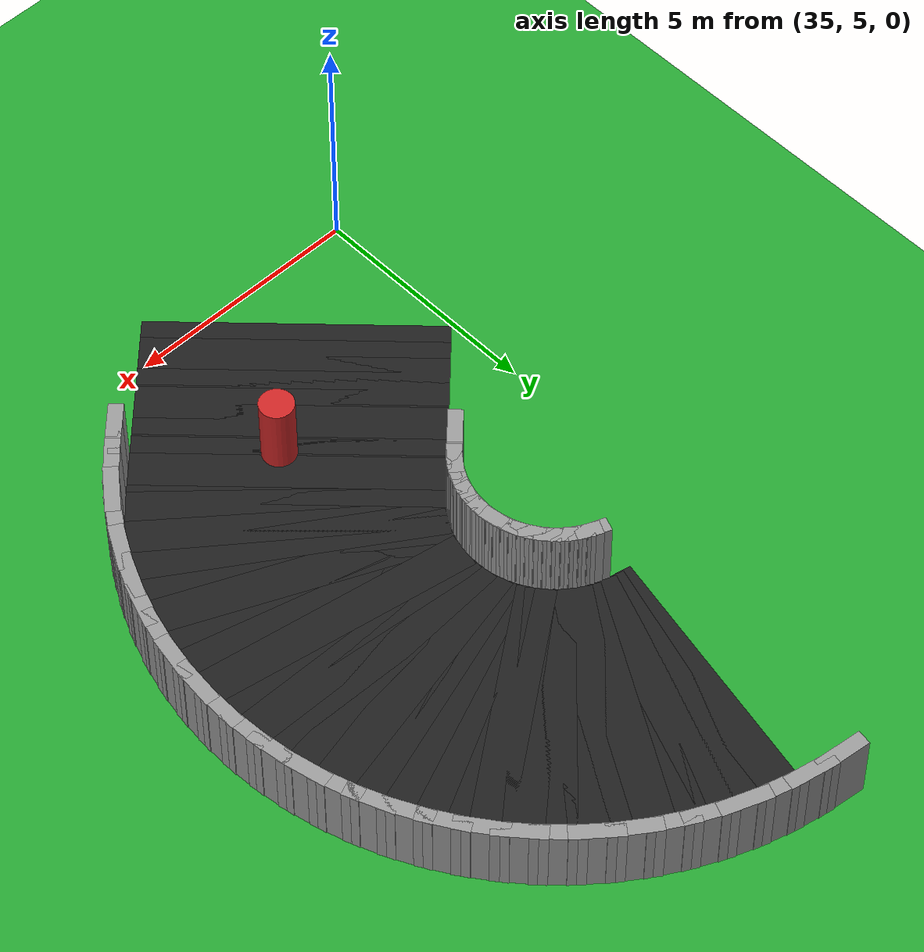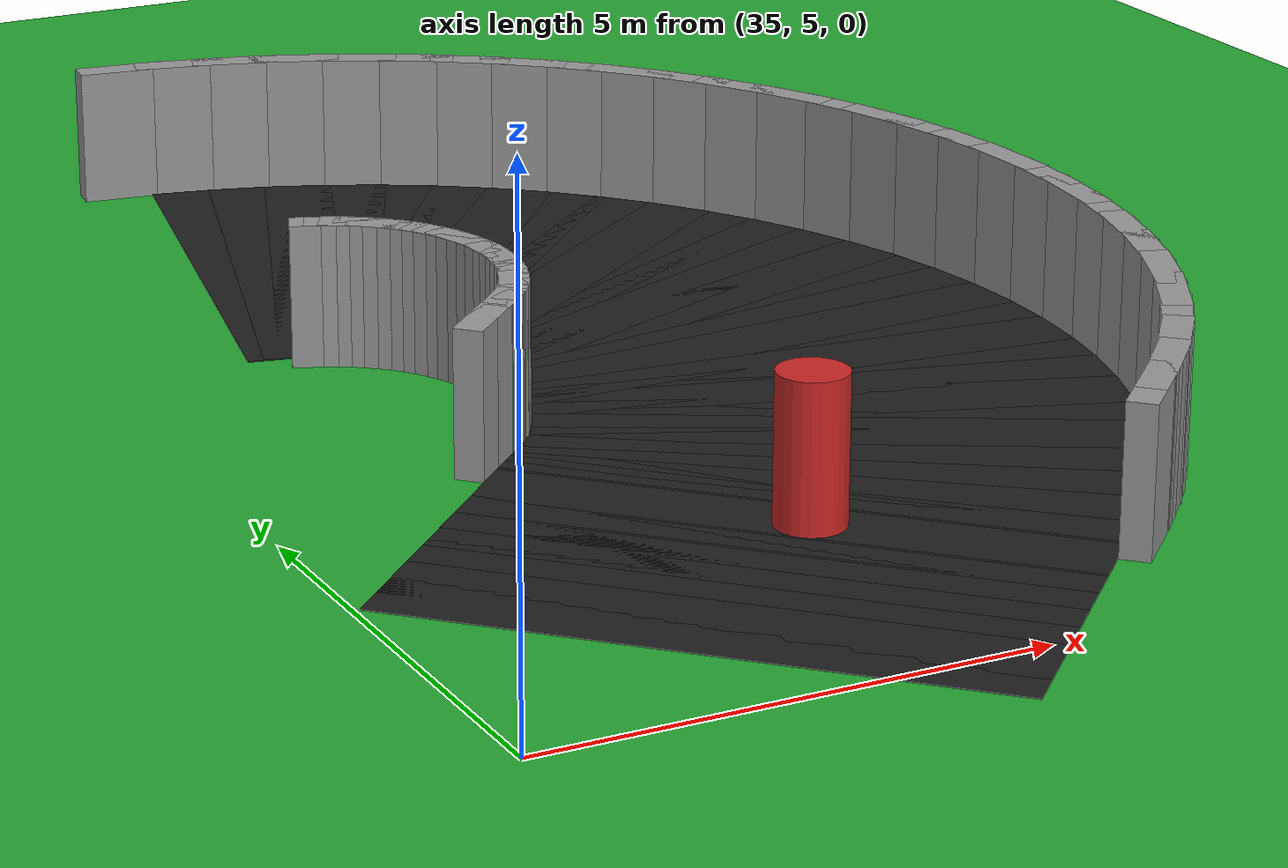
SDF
<sdf version="1.6">
 <world name="obstacle_mid">
  <include><uri>model://sun</uri></include>
  <model name="ground_plane">
   <static>true</static>
   <link name="link">
    <collision name="collision">
     <surface><friction><ode><mu>100</mu><mu2>50</mu2></ode></friction></surface>
     <geometry><plane><normal>0 0 1</normal><size>120 120</size></plane></geometry>
    </collision>
    <visual name="visual">
     <geometry><plane><normal>0 0 1</normal><size>120 120</size></plane></geometry>
     <material>
      <script><uri>file://media/materials/scripts/gazebo.material</uri><name>Gazebo/Green</name></script>
     </material>
    </visual>
   </link>
  </model>
  <model name="asphalt_99">
   <static>true</static>
   <pose>37.456 6.485 0.005 0 0 0.78540</pose>
   <link name="link">
    <visual name="visual">
     <geometry><box><size>0.760 6.000 0.010</size></box></geometry>
     <material>
      <script><uri>file://media/materials/scripts/gazebo.material</uri><name>Gazebo/Black</name></script>
     </material>
    </visual>
   </link>
  </model>
  <model name="asphalt_100">
   <static>true</static>
   <pose>37.738 6.768 0.005 0 0 0.78540</pose>
   <link name="link">
    <visual name="visual">
     <geometry><box><size>0.760 6.000 0.010</size></box></geometry>
     <material>
      <script><uri>file://media/materials/scripts/gazebo.material</uri><name>Gazebo/Black</name></script>
     </material>
    </visual>
   </link>
  </model>
  <model name="asphalt_101">
   <static>true</static>
   <pose>38.021 7.050 0.005 0 0 0.78540</pose>
   <link name="link">
    <visual name="visual">
     <geometry><box><size>0.760 6.000 0.010</size></box></geometry>
     <material>
      <script><uri>file://media/materials/scripts/gazebo.material</uri><name>Gazebo/Black</name></script>
     </material>
    </visual>
   </link>
  </model>
  <model name="asphalt_102">
   <static>true</static>
   <pose>38.304 7.333 0.005 0 0 0.78540</pose>
   <link name="link">
    <visual name="visual">
     <geometry><box><size>0.760 6.000 0.010</size></box></geometry>
     <material>
      <script><uri>file://media/materials/scripts/gazebo.material</uri><name>Gazebo/Black</name></script>
     </material>
    </visual>
   </link>
  </model>
  <model name="asphalt_103">
   <static>true</static>
   <pose>38.587 7.616 0.005 0 0 0.78540</pose>
   <link name="link">
    <visual name="visual">
     <geometry><box><size>0.760 6.000 0.010</size></box></geometry>
     <material>
      <script><uri>file://media/materials/scripts/gazebo.material</uri><name>Gazebo/Black</name></script>
     </material>
    </visual>
   </link>
  </model>
  <model name="asphalt_104">
   <static>true</static>
   <pose>38.870 7.899 0.005 0 0 0.78540</pose>
   <link name="link">
    <visual name="visual">
     <geometry><box><size>0.760 6.000 0.010</size></box></geometry>
     <material>
      <script><uri>file://media/materials/scripts/gazebo.material</uri><name>Gazebo/Black</name></script>
     </material>
    </visual>
   </link>
  </model>
  <model name="asphalt_105">
   <static>true</static>
   <pose>39.153 8.182 0.005 0 0 0.78540</pose>
   <link name="link">
    <visual name="visual">
     <geometry><box><size>0.760 6.000 0.010</size></box></geometry>
     <material>
      <script><uri>file://media/materials/scripts/gazebo.material</uri><name>Gazebo/Black</name></script>
     </material>
    </visual>
   </link>
  </model>
  <model name="asphalt_106">
   <static>true</static>
   <pose>39.435 8.465 0.005 0 0 0.78540</pose>
   <link name="link">
    <visual name="visual">
     <geometry><box><size>0.760 6.000 0.010</size></box></geometry>
     <material>
      <script><uri>file://media/materials/scripts/gazebo.material</uri><name>Gazebo/Black</name></script>
     </material>
    </visual>
   </link>
  </model>
  <model name="asphalt_107">
   <static>true</static>
   <pose>39.718 8.747 0.005 0 0 0.78540</pose>
   <link name="link">
    <visual name="visual">
     <geometry><box><size>0.760 6.000 0.010</size></box></geometry>
     <material>
      <script><uri>file://media/materials/scripts/gazebo.material</uri><name>Gazebo/Black</name></script>
     </material>
    </visual>
   </link>
  </model>
  <model name="curbL_107">
   <static>true</static>
   <pose>37.491 10.975 0.750 0 0 0.78540</pose>
   <link name="link">
    <collision name="collision"><geometry><box><size>0.760 0.300 1.500</size></box></geometry></collision>
    <visual name="visual">
     <geometry><box><size>0.760 0.300 1.500</size></box></geometry>
     <material>
      <script><uri>file://media/materials/scripts/gazebo.material</uri><name>Gazebo/Grey</name></script>
     </material>
    </visual>
   </link>
  </model>
  <model name="curbR_107">
   <static>true</static>
   <pose>41.946 6.520 0.750 0 0 0.78540</pose>
   <link name="link">
    <collision name="collision"><geometry><box><size>0.760 0.300 1.500</size></box></geometry></collision>
    <visual name="visual">
     <geometry><box><size>0.760 0.300 1.500</size></box></geometry>
     <material>
      <script><uri>file://media/materials/scripts/gazebo.material</uri><name>Gazebo/Grey</name></script>
     </material>
    </visual>
   </link>
  </model>
  <model name="asphalt_108">
   <static>true</static>
   <pose>40.001 9.030 0.005 0 0 0.78540</pose>
   <link name="link">
    <visual name="visual">
     <geometry><box><size>0.760 6.000 0.010</size></box></geometry>
     <material>
      <script><uri>file://media/materials/scripts/gazebo.material</uri><name>Gazebo/Black</name></script>
     </material>
    </visual>
   </link>
  </model>
  <model name="curbL_108">
   <static>true</static>
   <pose>37.774 11.258 0.750 0 0 0.78540</pose>
   <link name="link">
    <collision name="collision"><geometry><box><size>0.760 0.300 1.500</size></box></geometry></collision>
    <visual name="visual">
     <geometry><box><size>0.760 0.300 1.500</size></box></geometry>
     <material>
      <script><uri>file://media/materials/scripts/gazebo.material</uri><name>Gazebo/Grey</name></script>
     </material>
    </visual>
   </link>
  </model>
  <model name="curbR_108">
   <static>true</static>
   <pose>42.228 6.803 0.750 0 0 0.78540</pose>
   <link name="link">
    <collision name="collision"><geometry><box><size>0.760 0.300 1.500</size></box></geometry></collision>
    <visual name="visual">
     <geometry><box><size>0.760 0.300 1.500</size></box></geometry>
     <material>
      <script><uri>file://media/materials/scripts/gazebo.material</uri><name>Gazebo/Grey</name></script>
     </material>
    </visual>
   </link>
  </model>
  <model name="asphalt_109">
   <static>true</static>
   <pose>40.280 9.321 0.005 0 0 0.82602</pose>
   <link name="link">
    <visual name="visual">
     <geometry><box><size>0.766 6.000 0.010</size></box></geometry>
     <material>
      <script><uri>file://media/materials/scripts/gazebo.material</uri><name>Gazebo/Black</name></script>
     </material>
    </visual>
   </link>
  </model>
  <model name="curbL_109">
   <static>true</static>
   <pose>37.966 11.454 0.750 0 0 0.82602</pose>
   <link name="link">
    <collision name="collision"><geometry><box><size>0.510 0.300 1.500</size></box></geometry></collision>
    <visual name="visual">
     <geometry><box><size>0.510 0.300 1.500</size></box></geometry>
     <material>
      <script><uri>file://media/materials/scripts/gazebo.material</uri><name>Gazebo/Grey</name></script>
     </material>
    </visual>
   </link>
  </model>
  <model name="curbR_109">
   <static>true</static>
   <pose>42.594 7.188 0.750 0 0 0.82602</pose>
   <link name="link">
    <collision name="collision"><geometry><box><size>1.022 0.300 1.500</size></box></geometry></collision>
    <visual name="visual">
     <geometry><box><size>1.022 0.300 1.500</size></box></geometry>
     <material>
      <script><uri>file://media/materials/scripts/gazebo.material</uri><name>Gazebo/Grey</name></script>
     </material>
    </visual>
   </link>
  </model>
  <model name="asphalt_110">
   <static>true</static>
   <pose>40.543 9.630 0.005 0 0 0.90727</pose>
   <link name="link">
    <visual name="visual">
     <geometry><box><size>0.766 6.000 0.010</size></box></geometry>
     <material>
      <script><uri>file://media/materials/scripts/gazebo.material</uri><name>Gazebo/Black</name></script>
     </material>
    </visual>
   </link>
  </model>
  <model name="curbL_110">
   <static>true</static>
   <pose>38.063 11.569 0.750 0 0 0.90727</pose>
   <link name="link">
    <collision name="collision"><geometry><box><size>0.510 0.300 1.500</size></box></geometry></collision>
    <visual name="visual">
     <geometry><box><size>0.510 0.300 1.500</size></box></geometry>
     <material>
      <script><uri>file://media/materials/scripts/gazebo.material</uri><name>Gazebo/Grey</name></script>
     </material>
    </visual>
   </link>
  </model>
  <model name="curbR_110">
   <static>true</static>
   <pose>43.023 7.692 0.750 0 0 0.90727</pose>
   <link name="link">
    <collision name="collision"><geometry><box><size>1.022 0.300 1.500</size></box></geometry></collision>
    <visual name="visual">
     <geometry><box><size>1.022 0.300 1.500</size></box></geometry>
     <material>
      <script><uri>file://media/materials/scripts/gazebo.material</uri><name>Gazebo/Grey</name></script>
     </material>
    </visual>
   </link>
  </model>
  <model name="asphalt_111">
   <static>true</static>
   <pose>40.780 9.960 0.005 0 0 0.98852</pose>
   <link name="link">
    <visual name="visual">
     <geometry><box><size>0.766 6.000 0.010</size></box></geometry>
     <material>
      <script><uri>file://media/materials/scripts/gazebo.material</uri><name>Gazebo/Black</name></script>
     </material>
    </visual>
   </link>
  </model>
  <model name="curbL_111">
   <static>true</static>
   <pose>38.151 11.691 0.750 0 0 0.98852</pose>
   <link name="link">
    <collision name="collision"><geometry><box><size>0.510 0.300 1.500</size></box></geometry></collision>
    <visual name="visual">
     <geometry><box><size>0.510 0.300 1.500</size></box></geometry>
     <material>
      <script><uri>file://media/materials/scripts/gazebo.material</uri><name>Gazebo/Grey</name></script>
     </material>
    </visual>
   </link>
  </model>
  <model name="curbR_111">
   <static>true</static>
   <pose>43.409 8.229 0.750 0 0 0.98852</pose>
   <link name="link">
    <collision name="collision"><geometry><box><size>1.022 0.300 1.500</size></box></geometry></collision>
    <visual name="visual">
     <geometry><box><size>1.022 0.300 1.500</size></box></geometry>
     <material>
      <script><uri>file://media/materials/scripts/gazebo.material</uri><name>Gazebo/Grey</name></script>
     </material>
    </visual>
   </link>
  </model>
  <model name="asphalt_112">
   <static>true</static>
   <pose>40.989 10.308 0.005 0 0 1.06977</pose>
   <link name="link">
    <visual name="visual">
     <geometry><box><size>0.766 6.000 0.010</size></box></geometry>
     <material>
      <script><uri>file://media/materials/scripts/gazebo.material</uri><name>Gazebo/Black</name></script>
     </material>
    </visual>
   </link>
  </model>
  <model name="curbL_112">
   <static>true</static>
   <pose>38.228 11.820 0.750 0 0 1.06977</pose>
   <link name="link">
    <collision name="collision"><geometry><box><size>0.510 0.300 1.500</size></box></geometry></collision>
    <visual name="visual">
     <geometry><box><size>0.510 0.300 1.500</size></box></geometry>
     <material>
      <script><uri>file://media/materials/scripts/gazebo.material</uri><name>Gazebo/Grey</name></script>
     </material>
    </visual>
   </link>
  </model>
  <model name="curbR_112">
   <static>true</static>
   <pose>43.750 8.796 0.750 0 0 1.06977</pose>
   <link name="link">
    <collision name="collision"><geometry><box><size>1.022 0.300 1.500</size></box></geometry></collision>
    <visual name="visual">
     <geometry><box><size>1.022 0.300 1.500</size></box></geometry>
     <material>
      <script><uri>file://media/materials/scripts/gazebo.material</uri><name>Gazebo/Grey</name></script>
     </material>
    </visual>
   </link>
  </model>
  <model name="asphalt_113">
   <static>true</static>
   <pose>41.169 10.672 0.005 0 0 1.15101</pose>
   <link name="link">
    <visual name="visual">
     <geometry><box><size>0.766 6.000 0.010</size></box></geometry>
     <material>
      <script><uri>file://media/materials/scripts/gazebo.material</uri><name>Gazebo/Black</name></script>
     </material>
    </visual>
   </link>
  </model>
  <model name="curbL_113">
   <static>true</static>
   <pose>38.295 11.954 0.750 0 0 1.15101</pose>
   <link name="link">
    <collision name="collision"><geometry><box><size>0.510 0.300 1.500</size></box></geometry></collision>
    <visual name="visual">
     <geometry><box><size>0.510 0.300 1.500</size></box></geometry>
     <material>
      <script><uri>file://media/materials/scripts/gazebo.material</uri><name>Gazebo/Grey</name></script>
     </material>
    </visual>
   </link>
  </model>
  <model name="curbR_113">
   <static>true</static>
   <pose>44.044 9.389 0.750 0 0 1.15101</pose>
   <link name="link">
    <collision name="collision"><geometry><box><size>1.022 0.300 1.500</size></box></geometry></collision>
    <visual name="visual">
     <geometry><box><size>1.022 0.300 1.500</size></box></geometry>
     <material>
      <script><uri>file://media/materials/scripts/gazebo.material</uri><name>Gazebo/Grey</name></script>
     </material>
    </visual>
   </link>
  </model>
  <model name="asphalt_114">
   <static>true</static>
   <pose>41.320 11.049 0.005 0 0 1.23226</pose>
   <link name="link">
    <visual name="visual">
     <geometry><box><size>0.766 6.000 0.010</size></box></geometry>
     <material>
      <script><uri>file://media/materials/scripts/gazebo.material</uri><name>Gazebo/Black</name></script>
     </material>
    </visual>
   </link>
  </model>
  <model name="curbL_114">
   <static>true</static>
   <pose>38.351 12.094 0.750 0 0 1.23226</pose>
   <link name="link">
    <collision name="collision"><geometry><box><size>0.510 0.300 1.500</size></box></geometry></collision>
    <visual name="visual">
     <geometry><box><size>0.510 0.300 1.500</size></box></geometry>
     <material>
      <script><uri>file://media/materials/scripts/gazebo.material</uri><name>Gazebo/Grey</name></script>
     </material>
    </visual>
   </link>
  </model>
  <model name="curbR_114">
   <static>true</static>
   <pose>44.288 10.003 0.750 0 0 1.23226</pose>
   <link name="link">
    <collision name="collision"><geometry><box><size>1.022 0.300 1.500</size></box></geometry></collision>
    <visual name="visual">
     <geometry><box><size>1.022 0.300 1.500</size></box></geometry>
     <material>
      <script><uri>file://media/materials/scripts/gazebo.material</uri><name>Gazebo/Grey</name></script>
     </material>
    </visual>
   </link>
  </model>
  <model name="asphalt_115">
   <static>true</static>
   <pose>41.439 11.437 0.005 0 0 1.31351</pose>
   <link name="link">
    <visual name="visual">
     <geometry><box><size>0.766 6.000 0.010</size></box></geometry>
     <material>
      <script><uri>file://media/materials/scripts/gazebo.material</uri><name>Gazebo/Black</name></script>
     </material>
    </visual>
   </link>
  </model>
  <model name="curbL_115">
   <static>true</static>
   <pose>38.395 12.238 0.750 0 0 1.31351</pose>
   <link name="link">
    <collision name="collision"><geometry><box><size>0.510 0.300 1.500</size></box></geometry></collision>
    <visual name="visual">
     <geometry><box><size>0.510 0.300 1.500</size></box></geometry>
     <material>
      <script><uri>file://media/materials/scripts/gazebo.material</uri><name>Gazebo/Grey</name></script>
     </material>
    </visual>
   </link>
  </model>
  <model name="curbR_115">
   <static>true</static>
   <pose>44.483 10.636 0.750 0 0 1.31351</pose>
   <link name="link">
    <collision name="collision"><geometry><box><size>1.022 0.300 1.500</size></box></geometry></collision>
    <visual name="visual">
     <geometry><box><size>1.022 0.300 1.500</size></box></geometry>
     <material>
      <script><uri>file://media/materials/scripts/gazebo.material</uri><name>Gazebo/Grey</name></script>
     </material>
    </visual>
   </link>
  </model>
  <model name="asphalt_116">
   <static>true</static>
   <pose>41.526 11.833 0.005 0 0 1.39476</pose>
   <link name="link">
    <visual name="visual">
     <geometry><box><size>0.766 6.000 0.010</size></box></geometry>
     <material>
      <script><uri>file://media/materials/scripts/gazebo.material</uri><name>Gazebo/Black</name></script>
     </material>
    </visual>
   </link>
  </model>
  <model name="curbL_116">
   <static>true</static>
   <pose>38.427 12.384 0.750 0 0 1.39476</pose>
   <link name="link">
    <collision name="collision"><geometry><box><size>0.510 0.300 1.500</size></box></geometry></collision>
    <visual name="visual">
     <geometry><box><size>0.510 0.300 1.500</size></box></geometry>
     <material>
      <script><uri>file://media/materials/scripts/gazebo.material</uri><name>Gazebo/Grey</name></script>
     </material>
    </visual>
   </link>
  </model>
  <model name="curbR_116">
   <static>true</static>
   <pose>44.625 11.282 0.750 0 0 1.39476</pose>
   <link name="link">
    <collision name="collision"><geometry><box><size>1.022 0.300 1.500</size></box></geometry></collision>
    <visual name="visual">
     <geometry><box><size>1.022 0.300 1.500</size></box></geometry>
     <material>
      <script><uri>file://media/materials/scripts/gazebo.material</uri><name>Gazebo/Grey</name></script>
     </material>
    </visual>
   </link>
  </model>
  <model name="asphalt_117">
   <static>true</static>
   <pose>41.581 12.235 0.005 0 0 1.47601</pose>
   <link name="link">
    <visual name="visual">
     <geometry><box><size>0.766 6.000 0.010</size></box></geometry>
     <material>
      <script><uri>file://media/materials/scripts/gazebo.material</uri><name>Gazebo/Black</name></script>
     </material>
    </visual>
   </link>
  </model>
  <model name="curbL_117">
   <static>true</static>
   <pose>38.448 12.533 0.750 0 0 1.47601</pose>
   <link name="link">
    <collision name="collision"><geometry><box><size>0.510 0.300 1.500</size></box></geometry></collision>
    <visual name="visual">
     <geometry><box><size>0.510 0.300 1.500</size></box></geometry>
     <material>
      <script><uri>file://media/materials/scripts/gazebo.material</uri><name>Gazebo/Grey</name></script>
     </material>
    </visual>
   </link>
  </model>
  <model name="curbR_117">
   <static>true</static>
   <pose>44.714 11.937 0.750 0 0 1.47601</pose>
   <link name="link">
    <collision name="collision"><geometry><box><size>1.022 0.300 1.500</size></box></geometry></collision>
    <visual name="visual">
     <geometry><box><size>1.022 0.300 1.500</size></box></geometry>
     <material>
      <script><uri>file://media/materials/scripts/gazebo.material</uri><name>Gazebo/Grey</name></script>
     </material>
    </visual>
   </link>
  </model>
  <model name="asphalt_118">
   <static>true</static>
   <pose>41.603 12.641 0.005 0 0 1.55725</pose>
   <link name="link">
    <visual name="visual">
     <geometry><box><size>0.766 6.000 0.010</size></box></geometry>
     <material>
      <script><uri>file://media/materials/scripts/gazebo.material</uri><name>Gazebo/Black</name></script>
     </material>
    </visual>
   </link>
  </model>
  <model name="curbL_118">
   <static>true</static>
   <pose>38.456 12.683 0.750 0 0 1.55725</pose>
   <link name="link">
    <collision name="collision"><geometry><box><size>0.510 0.300 1.500</size></box></geometry></collision>
    <visual name="visual">
     <geometry><box><size>0.510 0.300 1.500</size></box></geometry>
     <material>
      <script><uri>file://media/materials/scripts/gazebo.material</uri><name>Gazebo/Grey</name></script>
     </material>
    </visual>
   </link>
  </model>
  <model name="curbR_118">
   <static>true</static>
   <pose>44.750 12.598 0.750 0 0 1.55725</pose>
   <link name="link">
    <collision name="collision"><geometry><box><size>1.022 0.300 1.500</size></box></geometry></collision>
    <visual name="visual">
     <geometry><box><size>1.022 0.300 1.500</size></box></geometry>
     <material>
      <script><uri>file://media/materials/scripts/gazebo.material</uri><name>Gazebo/Grey</name></script>
     </material>
    </visual>
   </link>
  </model>
  <model name="asphalt_119">
   <static>true</static>
   <pose>41.592 13.046 0.005 0 0 1.63850</pose>
   <link name="link">
    <visual name="visual">
     <geometry><box><size>0.766 6.000 0.010</size></box></geometry>
     <material>
      <script><uri>file://media/materials/scripts/gazebo.material</uri><name>Gazebo/Black</name></script>
     </material>
    </visual>
   </link>
  </model>
  <model name="curbL_119">
   <static>true</static>
   <pose>38.452 12.833 0.750 0 0 1.63850</pose>
   <link name="link">
    <collision name="collision"><geometry><box><size>0.510 0.300 1.500</size></box></geometry></collision>
    <visual name="visual">
     <geometry><box><size>0.510 0.300 1.500</size></box></geometry>
     <material>
      <script><uri>file://media/materials/scripts/gazebo.material</uri><name>Gazebo/Grey</name></script>
     </material>
    </visual>
   </link>
  </model>
  <model name="curbR_119">
   <static>true</static>
   <pose>44.732 13.259 0.750 0 0 1.63850</pose>
   <link name="link">
    <collision name="collision"><geometry><box><size>1.022 0.300 1.500</size></box></geometry></collision>
    <visual name="visual">
     <geometry><box><size>1.022 0.300 1.500</size></box></geometry>
     <material>
      <script><uri>file://media/materials/scripts/gazebo.material</uri><name>Gazebo/Grey</name></script>
     </material>
    </visual>
   </link>
  </model>
  <model name="asphalt_120">
   <static>true</static>
   <pose>41.548 13.450 0.005 0 0 1.71975</pose>
   <link name="link">
    <visual name="visual">
     <geometry><box><size>0.766 6.000 0.010</size></box></geometry>
     <material>
      <script><uri>file://media/materials/scripts/gazebo.material</uri><name>Gazebo/Black</name></script>
     </material>
    </visual>
   </link>
  </model>
  <model name="curbL_120">
   <static>true</static>
   <pose>38.435 12.983 0.750 0 0 1.71975</pose>
   <link name="link">
    <collision name="collision"><geometry><box><size>0.510 0.300 1.500</size></box></geometry></collision>
    <visual name="visual">
     <geometry><box><size>0.510 0.300 1.500</size></box></geometry>
     <material>
      <script><uri>file://media/materials/scripts/gazebo.material</uri><name>Gazebo/Grey</name></script>
     </material>
    </visual>
   </link>
  </model>
  <model name="curbR_120">
   <static>true</static>
   <pose>44.660 13.917 0.750 0 0 1.71975</pose>
   <link name="link">
    <collision name="collision"><geometry><box><size>1.022 0.300 1.500</size></box></geometry></collision>
    <visual name="visual">
     <geometry><box><size>1.022 0.300 1.500</size></box></geometry>
     <material>
      <script><uri>file://media/materials/scripts/gazebo.material</uri><name>Gazebo/Grey</name></script>
     </material>
    </visual>
   </link>
  </model>
  <model name="asphalt_121">
   <static>true</static>
   <pose>41.471 13.848 0.005 0 0 1.80100</pose>
   <link name="link">
    <visual name="visual">
     <geometry><box><size>0.766 6.000 0.010</size></box></geometry>
     <material>
      <script><uri>file://media/materials/scripts/gazebo.material</uri><name>Gazebo/Black</name></script>
     </material>
    </visual>
   </link>
  </model>
  <model name="curbL_121">
   <static>true</static>
   <pose>38.407 13.130 0.750 0 0 1.80100</pose>
   <link name="link">
    <collision name="collision"><geometry><box><size>0.510 0.300 1.500</size></box></geometry></collision>
    <visual name="visual">
     <geometry><box><size>0.510 0.300 1.500</size></box></geometry>
     <material>
      <script><uri>file://media/materials/scripts/gazebo.material</uri><name>Gazebo/Grey</name></script>
     </material>
    </visual>
   </link>
  </model>
  <model name="curbR_121">
   <static>true</static>
   <pose>44.536 14.567 0.750 0 0 1.80100</pose>
   <link name="link">
    <collision name="collision"><geometry><box><size>1.022 0.300 1.500</size></box></geometry></collision>
    <visual name="visual">
     <geometry><box><size>1.022 0.300 1.500</size></box></geometry>
     <material>
      <script><uri>file://media/materials/scripts/gazebo.material</uri><name>Gazebo/Grey</name></script>
     </material>
    </visual>
   </link>
  </model>
  <model name="asphalt_122">
   <static>true</static>
   <pose>41.363 14.240 0.005 0 0 1.88225</pose>
   <link name="link">
    <visual name="visual">
     <geometry><box><size>0.766 6.000 0.010</size></box></geometry>
     <material>
      <script><uri>file://media/materials/scripts/gazebo.material</uri><name>Gazebo/Black</name></script>
     </material>
    </visual>
   </link>
  </model>
  <model name="curbL_122">
   <static>true</static>
   <pose>38.367 13.275 0.750 0 0 1.88225</pose>
   <link name="link">
    <collision name="collision"><geometry><box><size>0.510 0.300 1.500</size></box></geometry></collision>
    <visual name="visual">
     <geometry><box><size>0.510 0.300 1.500</size></box></geometry>
     <material>
      <script><uri>file://media/materials/scripts/gazebo.material</uri><name>Gazebo/Grey</name></script>
     </material>
    </visual>
   </link>
  </model>
  <model name="curbR_122">
   <static>true</static>
   <pose>44.359 15.204 0.750 0 0 1.88225</pose>
   <link name="link">
    <collision name="collision"><geometry><box><size>1.022 0.300 1.500</size></box></geometry></collision>
    <visual name="visual">
     <geometry><box><size>1.022 0.300 1.500</size></box></geometry>
     <material>
      <script><uri>file://media/materials/scripts/gazebo.material</uri><name>Gazebo/Grey</name></script>
     </material>
    </visual>
   </link>
  </model>
  <model name="asphalt_123">
   <static>true</static>
   <pose>41.223 14.621 0.005 0 0 1.96350</pose>
   <link name="link">
    <visual name="visual">
     <geometry><box><size>0.766 6.000 0.010</size></box></geometry>
     <material>
      <script><uri>file://media/materials/scripts/gazebo.material</uri><name>Gazebo/Black</name></script>
     </material>
    </visual>
   </link>
  </model>
  <model name="curbL_123">
   <static>true</static>
   <pose>38.315 13.416 0.750 0 0 1.96350</pose>
   <link name="link">
    <collision name="collision"><geometry><box><size>0.510 0.300 1.500</size></box></geometry></collision>
    <visual name="visual">
     <geometry><box><size>0.510 0.300 1.500</size></box></geometry>
     <material>
      <script><uri>file://media/materials/scripts/gazebo.material</uri><name>Gazebo/Grey</name></script>
     </material>
    </visual>
   </link>
  </model>
  <model name="curbR_123">
   <static>true</static>
   <pose>44.131 15.825 0.750 0 0 1.96350</pose>
   <link name="link">
    <collision name="collision"><geometry><box><size>1.022 0.300 1.500</size></box></geometry></collision>
    <visual name="visual">
     <geometry><box><size>1.022 0.300 1.500</size></box></geometry>
     <material>
      <script><uri>file://media/materials/scripts/gazebo.material</uri><name>Gazebo/Grey</name></script>
     </material>
    </visual>
   </link>
  </model>
  <model name="asphalt_124">
   <static>true</static>
   <pose>41.052 14.989 0.005 0 0 2.04474</pose>
   <link name="link">
    <visual name="visual">
     <geometry><box><size>0.766 6.000 0.010</size></box></geometry>
     <material>
      <script><uri>file://media/materials/scripts/gazebo.material</uri><name>Gazebo/Black</name></script>
     </material>
    </visual>
   </link>
  </model>
  <model name="curbL_124">
   <static>true</static>
   <pose>38.252 13.553 0.750 0 0 2.04474</pose>
   <link name="link">
    <collision name="collision"><geometry><box><size>0.510 0.300 1.500</size></box></geometry></collision>
    <visual name="visual">
     <geometry><box><size>0.510 0.300 1.500</size></box></geometry>
     <material>
      <script><uri>file://media/materials/scripts/gazebo.material</uri><name>Gazebo/Grey</name></script>
     </material>
    </visual>
   </link>
  </model>
  <model name="curbR_124">
   <static>true</static>
   <pose>43.853 16.425 0.750 0 0 2.04474</pose>
   <link name="link">
    <collision name="collision"><geometry><box><size>1.022 0.300 1.500</size></box></geometry></collision>
    <visual name="visual">
     <geometry><box><size>1.022 0.300 1.500</size></box></geometry>
     <material>
      <script><uri>file://media/materials/scripts/gazebo.material</uri><name>Gazebo/Grey</name></script>
     </material>
    </visual>
   </link>
  </model>
  <model name="asphalt_125">
   <static>true</static>
   <pose>40.853 15.342 0.005 0 0 2.12599</pose>
   <link name="link">
    <visual name="visual">
     <geometry><box><size>0.766 6.000 0.010</size></box></geometry>
     <material>
      <script><uri>file://media/materials/scripts/gazebo.material</uri><name>Gazebo/Black</name></script>
     </material>
    </visual>
   </link>
  </model>
  <model name="curbL_125">
   <static>true</static>
   <pose>38.178 13.683 0.750 0 0 2.12599</pose>
   <link name="link">
    <collision name="collision"><geometry><box><size>0.510 0.300 1.500</size></box></geometry></collision>
    <visual name="visual">
     <geometry><box><size>0.510 0.300 1.500</size></box></geometry>
     <material>
      <script><uri>file://media/materials/scripts/gazebo.material</uri><name>Gazebo/Grey</name></script>
     </material>
    </visual>
   </link>
  </model>
  <model name="curbR_125">
   <static>true</static>
   <pose>43.527 17.001 0.750 0 0 2.12599</pose>
   <link name="link">
    <collision name="collision"><geometry><box><size>1.022 0.300 1.500</size></box></geometry></collision>
    <visual name="visual">
     <geometry><box><size>1.022 0.300 1.500</size></box></geometry>
     <material>
      <script><uri>file://media/materials/scripts/gazebo.material</uri><name>Gazebo/Grey</name></script>
     </material>
    </visual>
   </link>
  </model>
  <model name="asphalt_126">
   <static>true</static>
   <pose>40.625 15.678 0.005 0 0 2.20724</pose>
   <link name="link">
    <visual name="visual">
     <geometry><box><size>0.766 6.000 0.010</size></box></geometry>
     <material>
      <script><uri>file://media/materials/scripts/gazebo.material</uri><name>Gazebo/Black</name></script>
     </material>
    </visual>
   </link>
  </model>
  <model name="curbL_126">
   <static>true</static>
   <pose>38.094 13.808 0.750 0 0 2.20724</pose>
   <link name="link">
    <collision name="collision"><geometry><box><size>0.510 0.300 1.500</size></box></geometry></collision>
    <visual name="visual">
     <geometry><box><size>0.510 0.300 1.500</size></box></geometry>
     <material>
      <script><uri>file://media/materials/scripts/gazebo.material</uri><name>Gazebo/Grey</name></script>
     </material>
    </visual>
   </link>
  </model>
  <model name="curbR_126">
   <static>true</static>
   <pose>43.156 17.549 0.750 0 0 2.20724</pose>
   <link name="link">
    <collision name="collision"><geometry><box><size>1.022 0.300 1.500</size></box></geometry></collision>
    <visual name="visual">
     <geometry><box><size>1.022 0.300 1.500</size></box></geometry>
     <material>
      <script><uri>file://media/materials/scripts/gazebo.material</uri><name>Gazebo/Grey</name></script>
     </material>
    </visual>
   </link>
  </model>
  <model name="asphalt_127">
   <static>true</static>
   <pose>40.371 15.995 0.005 0 0 2.28849</pose>
   <link name="link">
    <visual name="visual">
     <geometry><box><size>0.766 6.000 0.010</size></box></geometry>
     <material>
      <script><uri>file://media/materials/scripts/gazebo.material</uri><name>Gazebo/Black</name></script>
     </material>
    </visual>
   </link>
  </model>
  <model name="curbL_127">
   <static>true</static>
   <pose>38.000 13.925 0.750 0 0 2.28849</pose>
   <link name="link">
    <collision name="collision"><geometry><box><size>0.510 0.300 1.500</size></box></geometry></collision>
    <visual name="visual">
     <geometry><box><size>0.510 0.300 1.500</size></box></geometry>
     <material>
      <script><uri>file://media/materials/scripts/gazebo.material</uri><name>Gazebo/Grey</name></script>
     </material>
    </visual>
   </link>
  </model>
  <model name="curbR_127">
   <static>true</static>
   <pose>42.742 18.065 0.750 0 0 2.28849</pose>
   <link name="link">
    <collision name="collision"><geometry><box><size>1.022 0.300 1.500</size></box></geometry></collision>
    <visual name="visual">
     <geometry><box><size>1.022 0.300 1.500</size></box></geometry>
     <material>
      <script><uri>file://media/materials/scripts/gazebo.material</uri><name>Gazebo/Grey</name></script>
     </material>
    </visual>
   </link>
  </model>
  <model name="asphalt_128">
   <static>true</static>
   <pose>40.091 16.289 0.005 0 0 2.36974</pose>
   <link name="link">
    <visual name="visual">
     <geometry><box><size>0.766 6.000 0.010</size></box></geometry>
     <material>
      <script><uri>file://media/materials/scripts/gazebo.material</uri><name>Gazebo/Black</name></script>
     </material>
    </visual>
   </link>
  </model>
  <model name="curbL_128">
   <static>true</static>
   <pose>37.896 14.034 0.750 0 0 2.36974</pose>
   <link name="link">
    <collision name="collision"><geometry><box><size>0.510 0.300 1.500</size></box></geometry></collision>
    <visual name="visual">
     <geometry><box><size>0.510 0.300 1.500</size></box></geometry>
     <material>
      <script><uri>file://media/materials/scripts/gazebo.material</uri><name>Gazebo/Grey</name></script>
     </material>
    </visual>
   </link>
  </model>
  <model name="curbR_128">
   <static>true</static>
   <pose>42.287 18.545 0.750 0 0 2.36974</pose>
   <link name="link">
    <collision name="collision"><geometry><box><size>1.022 0.300 1.500</size></box></geometry></collision>
    <visual name="visual">
     <geometry><box><size>1.022 0.300 1.500</size></box></geometry>
     <material>
      <script><uri>file://media/materials/scripts/gazebo.material</uri><name>Gazebo/Grey</name></script>
     </material>
    </visual>
   </link>
  </model>
  <model name="asphalt_129">
   <static>true</static>
   <pose>39.789 16.560 0.005 0 0 2.45098</pose>
   <link name="link">
    <visual name="visual">
     <geometry><box><size>0.766 6.000 0.010</size></box></geometry>
     <material>
      <script><uri>file://media/materials/scripts/gazebo.material</uri><name>Gazebo/Black</name></script>
     </material>
    </visual>
   </link>
  </model>
  <model name="curbL_129">
   <static>true</static>
   <pose>37.784 14.134 0.750 0 0 2.45098</pose>
   <link name="link">
    <collision name="collision"><geometry><box><size>0.510 0.300 1.500</size></box></geometry></collision>
    <visual name="visual">
     <geometry><box><size>0.510 0.300 1.500</size></box></geometry>
     <material>
      <script><uri>file://media/materials/scripts/gazebo.material</uri><name>Gazebo/Grey</name></script>
     </material>
    </visual>
   </link>
  </model>
  <model name="curbR_129">
   <static>true</static>
   <pose>41.794 18.987 0.750 0 0 2.45098</pose>
   <link name="link">
    <collision name="collision"><geometry><box><size>1.022 0.300 1.500</size></box></geometry></collision>
    <visual name="visual">
     <geometry><box><size>1.022 0.300 1.500</size></box></geometry>
     <material>
      <script><uri>file://media/materials/scripts/gazebo.material</uri><name>Gazebo/Grey</name></script>
     </material>
    </visual>
   </link>
  </model>
  <model name="asphalt_130">
   <static>true</static>
   <pose>39.466 16.806 0.005 0 0 2.53223</pose>
   <link name="link">
    <visual name="visual">
     <geometry><box><size>0.766 6.000 0.010</size></box></geometry>
     <material>
      <script><uri>file://media/materials/scripts/gazebo.material</uri><name>Gazebo/Black</name></script>
     </material>
    </visual>
   </link>
  </model>
  <model name="curbL_130">
   <static>true</static>
   <pose>37.665 14.225 0.750 0 0 2.53223</pose>
   <link name="link">
    <collision name="collision"><geometry><box><size>0.510 0.300 1.500</size></box></geometry></collision>
    <visual name="visual">
     <geometry><box><size>0.510 0.300 1.500</size></box></geometry>
     <material>
      <script><uri>file://media/materials/scripts/gazebo.material</uri><name>Gazebo/Grey</name></script>
     </material>
    </visual>
   </link>
  </model>
  <model name="curbR_130">
   <static>true</static>
   <pose>41.268 19.387 0.750 0 0 2.53223</pose>
   <link name="link">
    <collision name="collision"><geometry><box><size>1.022 0.300 1.500</size></box></geometry></collision>
    <visual name="visual">
     <geometry><box><size>1.022 0.300 1.500</size></box></geometry>
     <material>
      <script><uri>file://media/materials/scripts/gazebo.material</uri><name>Gazebo/Grey</name></script>
     </material>
    </visual>
   </link>
  </model>
  <model name="asphalt_131">
   <static>true</static>
   <pose>39.124 17.025 0.005 0 0 2.61348</pose>
   <link name="link">
    <visual name="visual">
     <geometry><box><size>0.766 6.000 0.010</size></box></geometry>
     <material>
      <script><uri>file://media/materials/scripts/gazebo.material</uri><name>Gazebo/Black</name></script>
     </material>
    </visual>
   </link>
  </model>
  <model name="curbL_131">
   <static>true</static>
   <pose>37.538 14.306 0.750 0 0 2.61348</pose>
   <link name="link">
    <collision name="collision"><geometry><box><size>0.510 0.300 1.500</size></box></geometry></collision>
    <visual name="visual">
     <geometry><box><size>0.510 0.300 1.500</size></box></geometry>
     <material>
      <script><uri>file://media/materials/scripts/gazebo.material</uri><name>Gazebo/Grey</name></script>
     </material>
    </visual>
   </link>
  </model>
  <model name="curbR_131">
   <static>true</static>
   <pose>40.710 19.743 0.750 0 0 2.61348</pose>
   <link name="link">
    <collision name="collision"><geometry><box><size>1.022 0.300 1.500</size></box></geometry></collision>
    <visual name="visual">
     <geometry><box><size>1.022 0.300 1.500</size></box></geometry>
     <material>
      <script><uri>file://media/materials/scripts/gazebo.material</uri><name>Gazebo/Grey</name></script>
     </material>
    </visual>
   </link>
  </model>
  <model name="asphalt_132">
   <static>true</static>
   <pose>38.766 17.215 0.005 0 0 2.69473</pose>
   <link name="link">
    <visual name="visual">
     <geometry><box><size>0.766 6.000 0.010</size></box></geometry>
     <material>
      <script><uri>file://media/materials/scripts/gazebo.material</uri><name>Gazebo/Black</name></script>
     </material>
    </visual>
   </link>
  </model>
  <model name="curbL_132">
   <static>true</static>
   <pose>37.405 14.376 0.750 0 0 2.69473</pose>
   <link name="link">
    <collision name="collision"><geometry><box><size>0.510 0.300 1.500</size></box></geometry></collision>
    <visual name="visual">
     <geometry><box><size>0.510 0.300 1.500</size></box></geometry>
     <material>
      <script><uri>file://media/materials/scripts/gazebo.material</uri><name>Gazebo/Grey</name></script>
     </material>
    </visual>
   </link>
  </model>
  <model name="curbR_132">
   <static>true</static>
   <pose>40.126 20.053 0.750 0 0 2.69473</pose>
   <link name="link">
    <collision name="collision"><geometry><box><size>1.022 0.300 1.500</size></box></geometry></collision>
    <visual name="visual">
     <geometry><box><size>1.022 0.300 1.500</size></box></geometry>
     <material>
      <script><uri>file://media/materials/scripts/gazebo.material</uri><name>Gazebo/Grey</name></script>
     </material>
    </visual>
   </link>
  </model>
  <model name="asphalt_133">
   <static>true</static>
   <pose>38.393 17.375 0.005 0 0 2.77598</pose>
   <link name="link">
    <visual name="visual">
     <geometry><box><size>0.766 6.000 0.010</size></box></geometry>
     <material>
      <script><uri>file://media/materials/scripts/gazebo.material</uri><name>Gazebo/Black</name></script>
     </material>
    </visual>
   </link>
  </model>
  <model name="curbL_133">
   <static>true</static>
   <pose>37.267 14.436 0.750 0 0 2.77598</pose>
   <link name="link">
    <collision name="collision"><geometry><box><size>0.510 0.300 1.500</size></box></geometry></collision>
    <visual name="visual">
     <geometry><box><size>0.510 0.300 1.500</size></box></geometry>
     <material>
      <script><uri>file://media/materials/scripts/gazebo.material</uri><name>Gazebo/Grey</name></script>
     </material>
    </visual>
   </link>
  </model>
  <model name="curbR_133">
   <static>true</static>
   <pose>39.518 20.315 0.750 0 0 2.77598</pose>
   <link name="link">
    <collision name="collision"><geometry><box><size>1.022 0.300 1.500</size></box></geometry></collision>
    <visual name="visual">
     <geometry><box><size>1.022 0.300 1.500</size></box></geometry>
     <material>
      <script><uri>file://media/materials/scripts/gazebo.material</uri><name>Gazebo/Grey</name></script>
     </material>
    </visual>
   </link>
  </model>
  <model name="asphalt_134">
   <static>true</static>
   <pose>38.008 17.505 0.005 0 0 2.85722</pose>
   <link name="link">
    <visual name="visual">
     <geometry><box><size>0.766 6.000 0.010</size></box></geometry>
     <material>
      <script><uri>file://media/materials/scripts/gazebo.material</uri><name>Gazebo/Black</name></script>
     </material>
    </visual>
   </link>
  </model>
  <model name="curbR_134">
   <static>true</static>
   <pose>38.891 20.526 0.750 0 0 2.85722</pose>
   <link name="link">
    <collision name="collision"><geometry><box><size>1.022 0.300 1.500</size></box></geometry></collision>
    <visual name="visual">
     <geometry><box><size>1.022 0.300 1.500</size></box></geometry>
     <material>
      <script><uri>file://media/materials/scripts/gazebo.material</uri><name>Gazebo/Grey</name></script>
     </material>
    </visual>
   </link>
  </model>
  <model name="asphalt_135">
   <static>true</static>
   <pose>37.614 17.603 0.005 0 0 2.93847</pose>
   <link name="link">
    <visual name="visual">
     <geometry><box><size>0.766 6.000 0.010</size></box></geometry>
     <material>
      <script><uri>file://media/materials/scripts/gazebo.material</uri><name>Gazebo/Black</name></script>
     </material>
    </visual>
   </link>
  </model>
  <model name="curbR_135">
   <static>true</static>
   <pose>38.249 20.685 0.750 0 0 2.93847</pose>
   <link name="link">
    <collision name="collision"><geometry><box><size>1.022 0.300 1.500</size></box></geometry></collision>
    <visual name="visual">
     <geometry><box><size>1.022 0.300 1.500</size></box></geometry>
     <material>
      <script><uri>file://media/materials/scripts/gazebo.material</uri><name>Gazebo/Grey</name></script>
     </material>
    </visual>
   </link>
  </model>
  <model name="curbR_136">
   <static>true</static>
   <pose>37.596 20.792 0.750 0 0 3.01972</pose>
   <link name="link">
    <collision name="collision"><geometry><box><size>1.022 0.300 1.500</size></box></geometry></collision>
    <visual name="visual">
     <geometry><box><size>1.022 0.300 1.500</size></box></geometry>
     <material>
      <script><uri>file://media/materials/scripts/gazebo.material</uri><name>Gazebo/Grey</name></script>
     </material>
    </visual>
   </link>
  </model>
  <model name="obs_5">
   <static>true</static>
   <pose>39.526 8.307 0.750 0 0 0</pose>
   <link name="link">
    <collision name="collision">
     <geometry><cylinder><radius>0.350</radius><length>1.500</length></cylinder></geometry>
    </collision>
    <visual name="visual">
     <geometry><cylinder><radius>0.350</radius><length>1.500</length></cylinder></geometry>
     <material>
      <script><uri>file://media/materials/scripts/gazebo.material</uri><name>Gazebo/Red</name></script>
     </material>
    </visual>
   </link>
  </model>
 </world>
</sdf>
